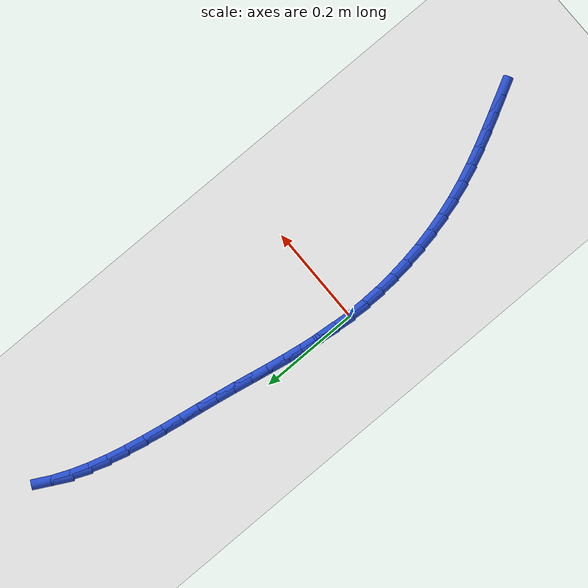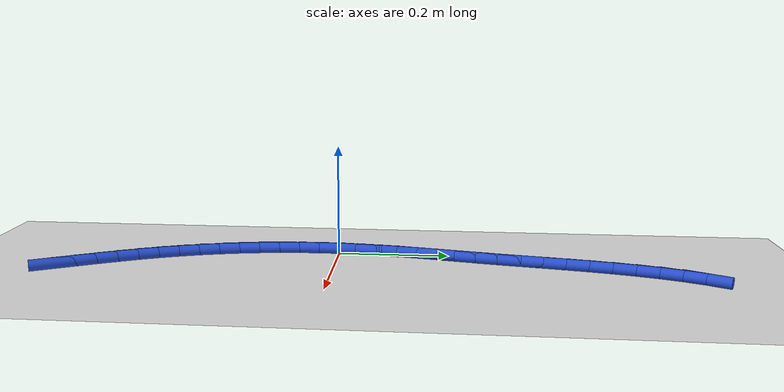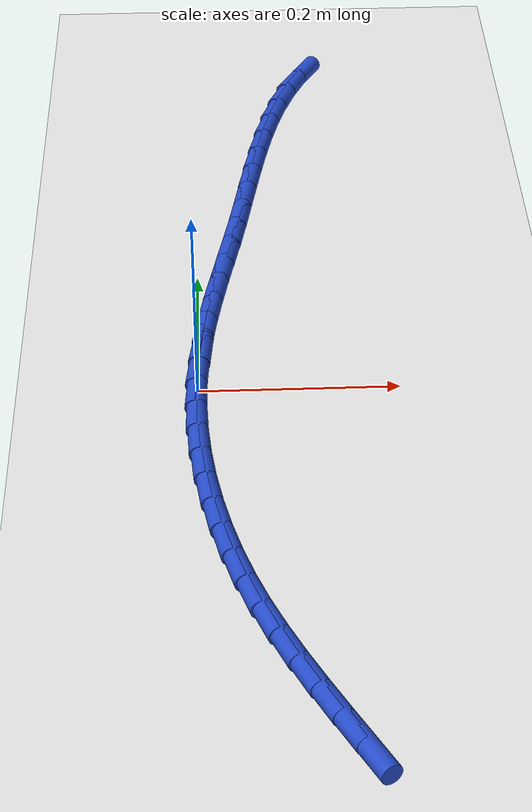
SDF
<sdf version="1.6">
 <world name="default">
  <model name="ground_plane">
   <static>1</static>
   <link name="link">
    <collision name="collision">
     <geometry><plane><normal>0 0 1</normal><size>100 100</size></plane></geometry>
     <surface><friction><ode><mu>100</mu><mu2>50</mu2></ode></friction></surface>
    </collision>
    <visual name="visual">
     <cast_shadows>0</cast_shadows>
     <geometry><plane><normal>0 0 1</normal><size>100 100</size></plane></geometry>
     <material>
      <script><uri>file://media/materials/scripts/gazebo.material</uri><name>Gazebo/WhiteGlow</name></script>
     </material>
    </visual>
   </link>
  </model>
  <model name="line">
   <link name="link_0">
    <pose>1.9081958235744878e-17 7.632783294297951e-17 0.01 0 1.57 1.5107125301188573</pose>
    <collision name="collision">
     <geometry><cylinder><radius>0.01</radius><length>0.08</length></cylinder></geometry>
    </collision>
    <visual name="visual">
     <material>
      <script><name>Gazebo/Blue</name><uri>file://media/materials/scripts/gazebo.material</uri></script>
     </material>
     <geometry><cylinder><radius>0.01</radius><length>0.08</length></cylinder></geometry>
    </visual>
   </link>
   <link name="link_1">
    <pose>0.0021696803780791364 0.03606744206211067 0.01 0 1.57 1.4698358230574256</pose>
    <collision name="collision">
     <geometry><cylinder><radius>0.01</radius><length>0.08</length></cylinder></geometry>
    </collision>
    <visual name="visual">
     <material>
      <script><name>Gazebo/Blue</name><uri>file://media/materials/scripts/gazebo.material</uri></script>
     </material>
     <geometry><cylinder><radius>0.01</radius><length>0.08</length></cylinder></geometry>
    </visual>
   </link>
   <link name="link_2">
    <pose>0.005795411700264697 0.07185771404397197 0.01 0 1.57 1.4364751229464514</pose>
    <collision name="collision">
     <geometry><cylinder><radius>0.01</radius><length>0.08</length></cylinder></geometry>
    </collision>
    <visual name="visual">
     <material>
      <script><name>Gazebo/Blue</name><uri>file://media/materials/scripts/gazebo.material</uri></script>
     </material>
     <geometry><cylinder><radius>0.01</radius><length>0.08</length></cylinder></geometry>
    </visual>
   </link>
   <link name="link_3">
    <pose>0.010614170161304264 0.10751659063302756 0.01 0 1.57 1.4110195175571607</pose>
    <collision name="collision">
     <geometry><cylinder><radius>0.01</radius><length>0.08</length></cylinder></geometry>
    </collision>
    <visual name="visual">
     <material>
      <script><name>Gazebo/Blue</name><uri>file://media/materials/scripts/gazebo.material</uri></script>
     </material>
     <geometry><cylinder><radius>0.01</radius><length>0.08</length></cylinder></geometry>
    </visual>
   </link>
   <link name="link_4">
    <pose>0.016362931955945417 0.14318984651672112 0.01 0 1.57 1.3936299652264368</pose>
    <collision name="collision">
     <geometry><cylinder><radius>0.01</radius><length>0.08</length></cylinder></geometry>
    </collision>
    <visual name="visual">
     <material>
      <script><name>Gazebo/Blue</name><uri>file://media/materials/scripts/gazebo.material</uri></script>
     </material>
     <geometry><cylinder><radius>0.01</radius><length>0.08</length></cylinder></geometry>
    </visual>
   </link>
   <link name="link_5">
    <pose>0.02277867327893572 0.1790232563824962 0.01 0 1.57 1.3842839368484852</pose>
    <collision name="collision">
     <geometry><cylinder><radius>0.01</radius><length>0.08</length></cylinder></geometry>
    </collision>
    <visual name="visual">
     <material>
      <script><name>Gazebo/Blue</name><uri>file://media/materials/scripts/gazebo.material</uri></script>
     </material>
     <geometry><cylinder><radius>0.01</radius><length>0.08</length></cylinder></geometry>
    </visual>
   </link>
   <link name="link_6">
    <pose>0.029598370325022758 0.2151625949177964 0.01 0 1.57 1.3828146434916295</pose>
    <collision name="collision">
     <geometry><cylinder><radius>0.01</radius><length>0.08</length></cylinder></geometry>
    </collision>
    <visual name="visual">
     <material>
      <script><name>Gazebo/Blue</name><uri>file://media/materials/scripts/gazebo.material</uri></script>
     </material>
     <geometry><cylinder><radius>0.01</radius><length>0.08</length></cylinder></geometry>
    </visual>
   </link>
   <link name="link_7">
    <pose>0.03655899928895408 0.2517536368100654 0.01 0 1.57 1.3889395975615912</pose>
    <collision name="collision">
     <geometry><cylinder><radius>0.01</radius><length>0.08</length></cylinder></geometry>
    </collision>
    <visual name="visual">
     <material>
      <script><name>Gazebo/Blue</name><uri>file://media/materials/scripts/gazebo.material</uri></script>
     </material>
     <geometry><cylinder><radius>0.01</radius><length>0.08</length></cylinder></geometry>
    </visual>
   </link>
   <link name="link_8">
    <pose>0.043397536365477274 0.28894215674674684 0.01 0 1.57 1.4005665244814194</pose>
    <collision name="collision">
     <geometry><cylinder><radius>0.01</radius><length>0.08</length></cylinder></geometry>
    </collision>
    <visual name="visual">
     <material>
      <script><name>Gazebo/Blue</name><uri>file://media/materials/scripts/gazebo.material</uri></script>
     </material>
     <geometry><cylinder><radius>0.01</radius><length>0.08</length></cylinder></geometry>
    </visual>
   </link>
   <link name="link_9">
    <pose>0.04991006792208452 0.3268291923162857 0.01 0 1.57 1.4066362405724966</pose>
    <collision name="collision">
     <geometry><cylinder><radius>0.01</radius><length>0.08</length></cylinder></geometry>
    </collision>
    <visual name="visual">
     <material>
      <script><name>Gazebo/Blue</name><uri>file://media/materials/scripts/gazebo.material</uri></script>
     </material>
     <geometry><cylinder><radius>0.01</radius><length>0.08</length></cylinder></geometry>
    </visual>
   </link>
   <link name="link_10">
    <pose>0.05627108980315464 0.3652293846808706 0.01 0 1.57 1.403196595726689</pose>
    <collision name="collision">
     <geometry><cylinder><radius>0.01</radius><length>0.08</length></cylinder></geometry>
    </collision>
    <visual name="visual">
     <material>
      <script><name>Gazebo/Blue</name><uri>file://media/materials/scripts/gazebo.material</uri></script>
     </material>
     <geometry><cylinder><radius>0.01</radius><length>0.08</length></cylinder></geometry>
    </visual>
   </link>
   <link name="link_11">
    <pose>0.06280425663752094 0.40384448527496924 0.01 0 1.57 1.390349921122728</pose>
    <collision name="collision">
     <geometry><cylinder><radius>0.01</radius><length>0.08</length></cylinder></geometry>
    </collision>
    <visual name="visual">
     <material>
      <script><name>Gazebo/Blue</name><uri>file://media/materials/scripts/gazebo.material</uri></script>
     </material>
     <geometry><cylinder><radius>0.01</radius><length>0.08</length></cylinder></geometry>
    </visual>
   </link>
   <link name="link_12">
    <pose>0.06983358477151644 0.4423759717698235 0.01 0 1.57 1.3678711176888354</pose>
    <collision name="collision">
     <geometry><cylinder><radius>0.01</radius><length>0.08</length></cylinder></geometry>
    </collision>
    <visual name="visual">
     <material>
      <script><name>Gazebo/Blue</name><uri>file://media/materials/scripts/gazebo.material</uri></script>
     </material>
     <geometry><cylinder><radius>0.01</radius><length>0.08</length></cylinder></geometry>
    </visual>
   </link>
   <link name="link_13">
    <pose>0.07768309055147422 0.48052532183667507 0.01 0 1.57 1.3352207141225851</pose>
    <collision name="collision">
     <geometry><cylinder><radius>0.01</radius><length>0.08</length></cylinder></geometry>
    </collision>
    <visual name="visual">
     <material>
      <script><name>Gazebo/Blue</name><uri>file://media/materials/scripts/gazebo.material</uri></script>
     </material>
     <geometry><cylinder><radius>0.01</radius><length>0.08</length></cylinder></geometry>
    </visual>
   </link>
   <link name="link_14">
    <pose>0.08667679032372737 0.5179940131467659 0.01 0 1.57 1.2915762773624162</pose>
    <collision name="collision">
     <geometry><cylinder><radius>0.01</radius><length>0.08</length></cylinder></geometry>
    </collision>
    <visual name="visual">
     <material>
      <script><name>Gazebo/Blue</name><uri>file://media/materials/scripts/gazebo.material</uri></script>
     </material>
     <geometry><cylinder><radius>0.01</radius><length>0.08</length></cylinder></geometry>
    </visual>
   </link>
   <link name="link_15">
    <pose>0.09713870043460894 0.5544835233713372 0.01 0 1.57 1.235893511893885</pose>
    <collision name="collision">
     <geometry><cylinder><radius>0.01</radius><length>0.08</length></cylinder></geometry>
    </collision>
    <visual name="visual">
     <material>
      <script><name>Gazebo/Blue</name><uri>file://media/materials/scripts/gazebo.material</uri></script>
     </material>
     <geometry><cylinder><radius>0.01</radius><length>0.08</length></cylinder></geometry>
    </visual>
   </link>
   <link name="link_16">
    <pose>0.10939283723045201 0.5896953301816312 0.01 0 1.57 1.1670320679558441</pose>
    <collision name="collision">
     <geometry><cylinder><radius>0.01</radius><length>0.08</length></cylinder></geometry>
    </collision>
    <visual name="visual">
     <material>
      <script><name>Gazebo/Blue</name><uri>file://media/materials/scripts/gazebo.material</uri></script>
     </material>
     <geometry><cylinder><radius>0.01</radius><length>0.08</length></cylinder></geometry>
    </visual>
   </link>
   <link name="link_17">
    <pose>0.1237632170575896 0.6233309112488893 0.01 0 1.57 1.0839934890728224</pose>
    <collision name="collision">
     <geometry><cylinder><radius>0.01</radius><length>0.08</length></cylinder></geometry>
    </collision>
    <visual name="visual">
     <material>
      <script><name>Gazebo/Blue</name><uri>file://media/materials/scripts/gazebo.material</uri></script>
     </material>
     <geometry><cylinder><radius>0.01</radius><length>0.08</length></cylinder></geometry>
    </visual>
   </link>
   <link name="link_196">
    <pose>0.13386764349414046 -0.4863949020204281 0.01 0 1.57 -1.0865059022051895</pose>
    <collision name="collision">
     <geometry><cylinder><radius>0.01</radius><length>0.08</length></cylinder></geometry>
    </collision>
    <visual name="visual">
     <material>
      <script><name>Gazebo/Blue</name><uri>file://media/materials/scripts/gazebo.material</uri></script>
     </material>
     <geometry><cylinder><radius>0.01</radius><length>0.08</length></cylinder></geometry>
    </visual>
   </link>
   <link name="link_197">
    <pose>0.11677351408810673 -0.4539012747942369 0.01 0 1.57 -1.095111799221339</pose>
    <collision name="collision">
     <geometry><cylinder><radius>0.01</radius><length>0.08</length></cylinder></geometry>
    </collision>
    <visual name="visual">
     <material>
      <script><name>Gazebo/Blue</name><uri>file://media/materials/scripts/gazebo.material</uri></script>
     </material>
     <geometry><cylinder><radius>0.01</radius><length>0.08</length></cylinder></geometry>
    </visual>
   </link>
   <link name="link_198">
    <pose>0.10012219103496382 -0.42157726941378587 0.01 0 1.57 -1.112441831879173</pose>
    <collision name="collision">
     <geometry><cylinder><radius>0.01</radius><length>0.08</length></cylinder></geometry>
    </collision>
    <visual name="visual">
     <material>
      <script><name>Gazebo/Blue</name><uri>file://media/materials/scripts/gazebo.material</uri></script>
     </material>
     <geometry><cylinder><radius>0.01</radius><length>0.08</length></cylinder></geometry>
    </visual>
   </link>
   <link name="link_199">
    <pose>0.08414562075542073 -0.38919677171754197 0.01 0 1.57 -1.138525047399726</pose>
    <collision name="collision">
     <geometry><cylinder><radius>0.01</radius><length>0.08</length></cylinder></geometry>
    </collision>
    <visual name="visual">
     <material>
      <script><name>Gazebo/Blue</name><uri>file://media/materials/scripts/gazebo.material</uri></script>
     </material>
     <geometry><cylinder><radius>0.01</radius><length>0.08</length></cylinder></geometry>
    </visual>
   </link>
   <link name="link_200">
    <pose>0.06907574967018654 -0.3565336675439722 0.01 0 1.57 -1.17319244803863</pose>
    <collision name="collision">
     <geometry><cylinder><radius>0.01</radius><length>0.08</length></cylinder></geometry>
    </collision>
    <visual name="visual">
     <material>
      <script><name>Gazebo/Blue</name><uri>file://media/materials/scripts/gazebo.material</uri></script>
     </material>
     <geometry><cylinder><radius>0.01</radius><length>0.08</length></cylinder></geometry>
    </visual>
   </link>
   <link name="link_201">
    <pose>0.05514452419997021 -0.32336184273154317 0.01 0 1.57 -1.2160172251578667</pose>
    <collision name="collision">
     <geometry><cylinder><radius>0.01</radius><length>0.08</length></cylinder></geometry>
    </collision>
    <visual name="visual">
     <material>
      <script><name>Gazebo/Blue</name><uri>file://media/materials/scripts/gazebo.material</uri></script>
     </material>
     <geometry><cylinder><radius>0.01</radius><length>0.08</length></cylinder></geometry>
    </visual>
   </link>
   <link name="link_202">
    <pose>0.042583759362271 -0.2894554243703766 0.01 0 1.57 -1.2640416439570676</pose>
    <collision name="collision">
     <geometry><cylinder><radius>0.01</radius><length>0.08</length></cylinder></geometry>
    </collision>
    <visual name="visual">
     <material>
      <script><name>Gazebo/Blue</name><uri>file://media/materials/scripts/gazebo.material</uri></script>
     </material>
     <geometry><cylinder><radius>0.01</radius><length>0.08</length></cylinder></geometry>
    </visual>
   </link>
   <link name="link_203">
    <pose>0.03157108439973157 -0.25468802272098306 0.01 0 1.57 -1.3113219246496883</pose>
    <collision name="collision">
     <geometry><cylinder><radius>0.01</radius><length>0.08</length></cylinder></geometry>
    </collision>
    <visual name="visual">
     <material>
      <script><name>Gazebo/Blue</name><uri>file://media/materials/scripts/gazebo.material</uri></script>
     </material>
     <geometry><cylinder><radius>0.01</radius><length>0.08</length></cylinder></geometry>
    </visual>
   </link>
   <link name="link_204">
    <pose>0.02214666155435082 -0.21918563260575102 0.01 0 1.57 -1.3573776248517915</pose>
    <collision name="collision">
     <geometry><cylinder><radius>0.01</radius><length>0.08</length></cylinder></geometry>
    </collision>
    <visual name="visual">
     <material>
      <script><name>Gazebo/Blue</name><uri>file://media/materials/scripts/gazebo.material</uri></script>
     </material>
     <geometry><cylinder><radius>0.01</radius><length>0.08</length></cylinder></geometry>
    </visual>
   </link>
   <link name="link_205">
    <pose>0.01432917977358593 -0.18311367305804202 0.01 0 1.57 -1.402648302097958</pose>
    <collision name="collision">
     <geometry><cylinder><radius>0.01</radius><length>0.08</length></cylinder></geometry>
    </collision>
    <visual name="visual">
     <material>
      <script><name>Gazebo/Blue</name><uri>file://media/materials/scripts/gazebo.material</uri></script>
     </material>
     <geometry><cylinder><radius>0.01</radius><length>0.08</length></cylinder></geometry>
    </visual>
   </link>
   <link name="link_206">
    <pose>0.008137328004894043 -0.1466375631112176 0.01 0 1.57 -1.4475630772796948</pose>
    <collision name="collision">
     <geometry><cylinder><radius>0.01</radius><length>0.08</length></cylinder></geometry>
    </collision>
    <visual name="visual">
     <material>
      <script><name>Gazebo/Blue</name><uri>file://media/materials/scripts/gazebo.material</uri></script>
     </material>
     <geometry><cylinder><radius>0.01</radius><length>0.08</length></cylinder></geometry>
    </visual>
   </link>
   <link name="link_207">
    <pose>0.0035897951957323394 -0.10992272179863949 0.01 0 1.57 -1.4925473528343793</pose>
    <collision name="collision">
     <geometry><cylinder><radius>0.01</radius><length>0.08</length></cylinder></geometry>
    </collision>
    <visual name="visual">
     <material>
      <script><name>Gazebo/Blue</name><uri>file://media/materials/scripts/gazebo.material</uri></script>
     </material>
     <geometry><cylinder><radius>0.01</radius><length>0.08</length></cylinder></geometry>
    </visual>
   </link>
   <link name="link_208">
    <pose>0.0007052702935579874 -0.07313456815366942 0.01 0 1.57 -1.538029921418241</pose>
    <collision name="collision">
     <geometry><cylinder><radius>0.01</radius><length>0.08</length></cylinder></geometry>
    </collision>
    <visual name="visual">
     <material>
      <script><name>Gazebo/Blue</name><uri>file://media/materials/scripts/gazebo.material</uri></script>
     </material>
     <geometry><cylinder><radius>0.01</radius><length>0.08</length></cylinder></geometry>
    </visual>
   </link>
   <link name="link_209">
    <pose>-0.0004975577541718517 -0.03643852120966809 0.01 0 1.57 1.5571424567234062</pose>
    <collision name="collision">
     <geometry><cylinder><radius>0.01</radius><length>0.08</length></cylinder></geometry>
    </collision>
    <visual name="visual">
     <material>
      <script><name>Gazebo/Blue</name><uri>file://media/materials/scripts/gazebo.material</uri></script>
     </material>
     <geometry><cylinder><radius>0.01</radius><length>0.08</length></cylinder></geometry>
    </visual>
   </link>
   <link name="link_210">
    <pose>1.3877787807814457e-17 2.2898349882893854e-16 0.01 0 1.57 1.5093273675376588</pose>
    <collision name="collision">
     <geometry><cylinder><radius>0.01</radius><length>0.08</length></cylinder></geometry>
    </collision>
    <visual name="visual">
     <material>
      <script><name>Gazebo/Blue</name><uri>file://media/materials/scripts/gazebo.material</uri></script>
     </material>
     <geometry><cylinder><radius>0.01</radius><length>0.08</length></cylinder></geometry>
    </visual>
   </link>
   <link name="link_211">
    <pose>0.0022166325035307237 0.03601557644197651 0.01 0 1.57 1.459636151793357</pose>
    <collision name="collision">
     <geometry><cylinder><radius>0.01</radius><length>0.08</length></cylinder></geometry>
    </collision>
    <visual name="visual">
     <material>
      <script><name>Gazebo/Blue</name><uri>file://media/materials/scripts/gazebo.material</uri></script>
     </material>
     <geometry><cylinder><radius>0.01</radius><length>0.08</length></cylinder></geometry>
    </visual>
   </link>
   <link name="link_212">
    <pose>0.006171028703877682 0.0714427890828998 0.01 0 1.57 1.484632982261605</pose>
    <collision name="collision">
     <geometry><cylinder><radius>0.01</radius><length>0.08</length></cylinder></geometry>
    </collision>
    <visual name="visual">
     <material>
      <script><name>Gazebo/Blue</name><uri>file://media/materials/scripts/gazebo.material</uri></script>
     </material>
     <geometry><cylinder><radius>0.01</radius><length>0.08</length></cylinder></geometry>
    </visual>
   </link>
  </model>
 </world>
</sdf>
